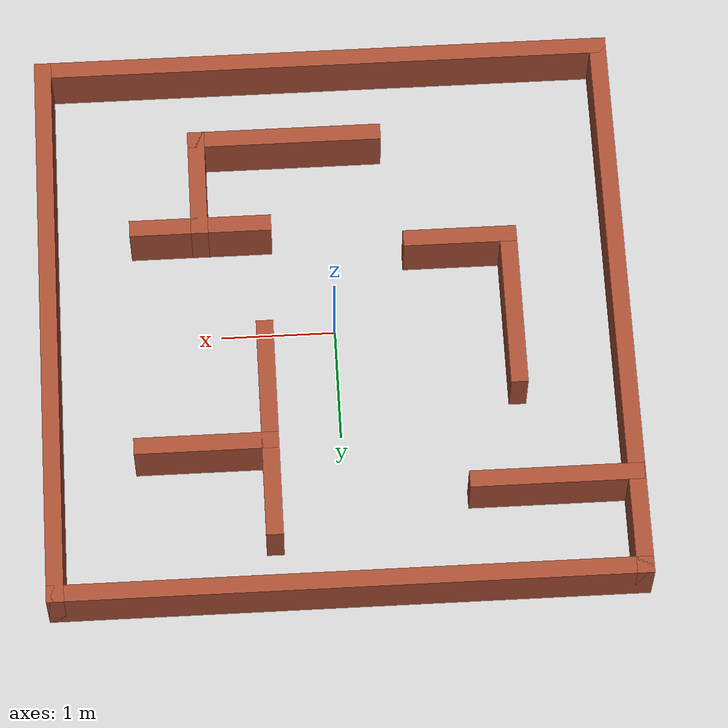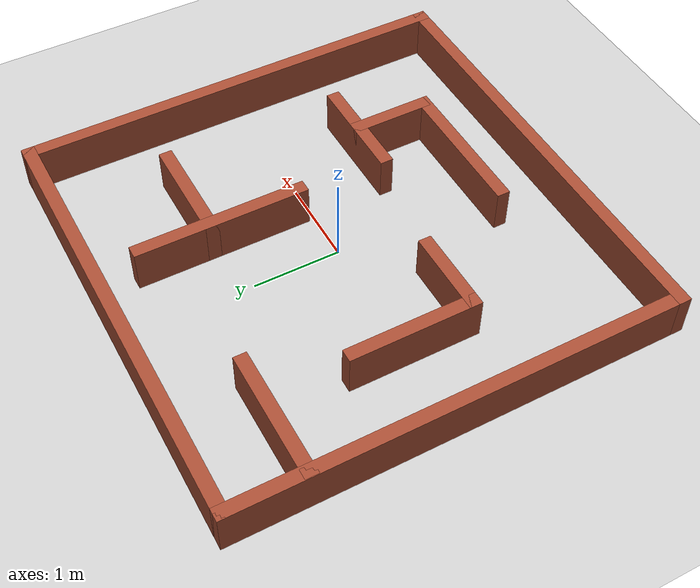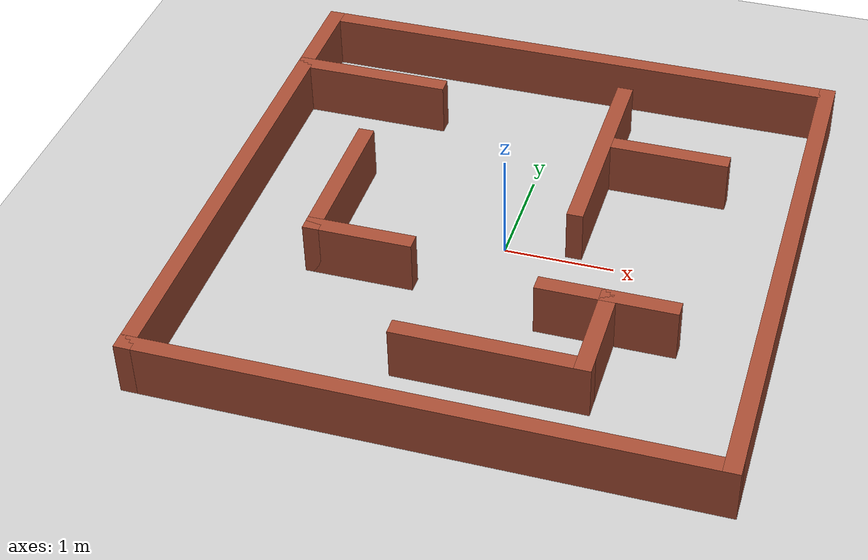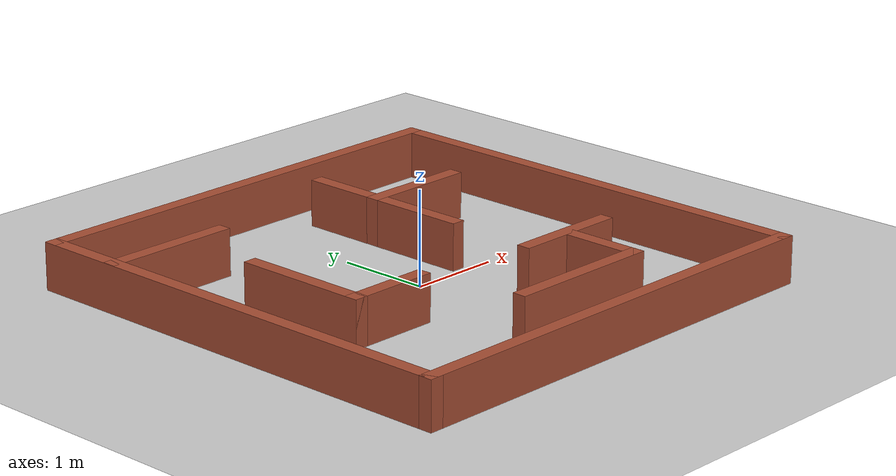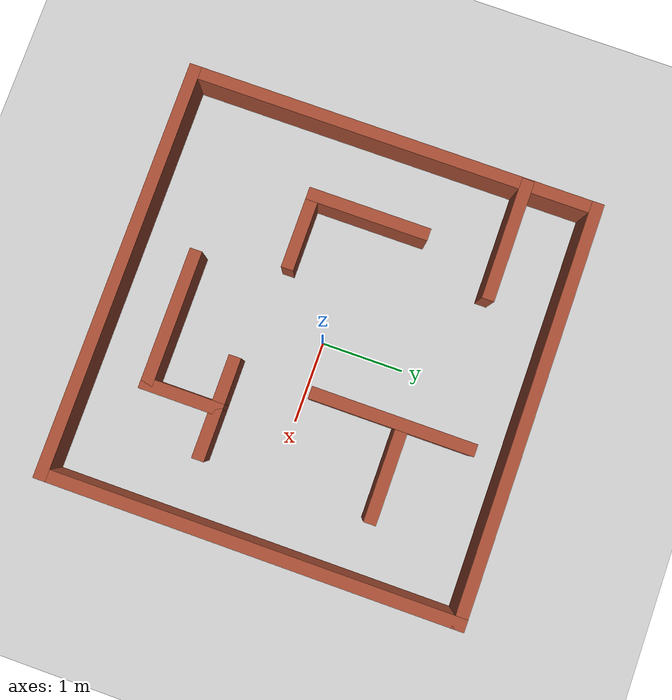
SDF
<sdf version="1.7">
 <world name="default">
  <light name="sun" type="directional">
   <pose>0 0 10 0 -0 0</pose>
   <diffuse>0.8 0.8 0.8 1</diffuse>
   <specular>0.2 0.2 0.2 1</specular>
   <attenuation>
    <range>1000</range>
    <constant>0.9</constant>
    <linear>0.01</linear>
    <quadratic>0.001</quadratic>
   </attenuation>
   <direction>-0.5 0.1 -0.9</direction>
   <spot><inner_angle>0</inner_angle><outer_angle>0</outer_angle><falloff>0</falloff></spot>
  </light>
  <model name="ground_plane">
   <static>1</static>
   <link name="link">
    <collision name="collision">
     <geometry><plane><normal>0 0 1</normal><size>100 100</size></plane></geometry>
     <surface>
      <contact><collide_bitmask>65535</collide_bitmask></contact>
      <friction><ode><mu>100</mu><mu2>50</mu2></ode></friction>
     </surface>
    </collision>
    <visual name="visual">
     <cast_shadows>0</cast_shadows>
     <geometry><plane><normal>0 0 1</normal><size>100 100</size></plane></geometry>
     <material>
      <script><uri>file://media/materials/scripts/gazebo.material</uri><name>Gazebo/Grey</name></script>
     </material>
    </visual>
   </link>
  </model>
  <gravity>0 0 -9.8</gravity>
  <magnetic_field>6e-06 2.3e-05 -4.2e-05</magnetic_field>
  <atmosphere type="adiabatic"/>
  <physics type="ode">
   <max_step_size>0.001</max_step_size>
   <real_time_factor>1</real_time_factor>
   <real_time_update_rate>1000</real_time_update_rate>
  </physics>
  <scene><ambient>0.4 0.4 0.4 1</ambient><background>0.7 0.7 0.7 1</background><shadows>1</shadows></scene>
  <spherical_coordinates>
   <surface_model>EARTH_WGS84</surface_model>
   <latitude_deg>0</latitude_deg>
   <longitude_deg>0</longitude_deg>
   <elevation>0</elevation>
   <heading_deg>0</heading_deg>
  </spherical_coordinates>
  <model name="single_map">
   <link name="Wall_10">
    <collision name="Wall_10_Collision">
     <geometry><box><size>5.15 0.15 0.5</size></box></geometry>
     <pose>0 0 0.25 0 -0 0</pose>
    </collision>
    <visual name="Wall_10_Visual">
     <pose>0 0 0.25 0 -0 0</pose>
     <geometry><box><size>5.15 0.15 0.5</size></box></geometry>
     <material>
      <script><uri>file://media/materials/scripts/gazebo.material</uri><name>Gazebo/Bricks</name></script>
      <ambient>1 1 1 1</ambient>
     </material>
     <meta><layer>0</layer></meta>
    </visual>
    <pose>0 2.5 0 0 -0 0</pose>
   </link>
   <link name="Wall_11">
    <collision name="Wall_11_Collision">
     <geometry><box><size>5.15 0.15 0.5</size></box></geometry>
     <pose>0 0 0.25 0 -0 0</pose>
    </collision>
    <visual name="Wall_11_Visual">
     <pose>0 0 0.25 0 -0 0</pose>
     <geometry><box><size>5.15 0.15 0.5</size></box></geometry>
     <material>
      <script><uri>file://media/materials/scripts/gazebo.material</uri><name>Gazebo/Bricks</name></script>
      <ambient>1 1 1 1</ambient>
     </material>
     <meta><layer>0</layer></meta>
    </visual>
    <pose>2.5 0 0 0 -0 -1.5708</pose>
   </link>
   <link name="Wall_12">
    <collision name="Wall_12_Collision">
     <geometry><box><size>5.15 0.15 0.5</size></box></geometry>
     <pose>0 0 0.25 0 -0 0</pose>
    </collision>
    <visual name="Wall_12_Visual">
     <pose>0 0 0.25 0 -0 0</pose>
     <geometry><box><size>5.15 0.15 0.5</size></box></geometry>
     <material>
      <script><uri>file://media/materials/scripts/gazebo.material</uri><name>Gazebo/Bricks</name></script>
      <ambient>1 1 1 1</ambient>
     </material>
     <meta><layer>0</layer></meta>
    </visual>
    <pose>0 -2.5 0 0 -0 3.14159</pose>
   </link>
   <link name="Wall_13">
    <collision name="Wall_13_Collision">
     <geometry><box><size>5.15 0.15 0.5</size></box></geometry>
     <pose>0 0 0.25 0 -0 0</pose>
    </collision>
    <visual name="Wall_13_Visual">
     <pose>0 0 0.25 0 -0 0</pose>
     <geometry><box><size>5.15 0.15 0.5</size></box></geometry>
     <material>
      <script><uri>file://media/materials/scripts/gazebo.material</uri><name>Gazebo/Bricks</name></script>
      <ambient>1 1 1 1</ambient>
     </material>
     <meta><layer>0</layer></meta>
    </visual>
    <pose>-2.5 0 0 0 -0 1.5708</pose>
   </link>
   <link name="Wall_15">
    <collision name="Wall_15_Collision">
     <geometry><box><size>1.5 0.15 0.5</size></box></geometry>
     <pose>0 0 0.25 0 -0 0</pose>
    </collision>
    <visual name="Wall_15_Visual">
     <pose>0 0 0.25 0 -0 0</pose>
     <geometry><box><size>1.5 0.15 0.5</size></box></geometry>
     <material>
      <script><uri>file://media/materials/scripts/gazebo.material</uri><name>Gazebo/Bricks</name></script>
      <ambient>1 1 1 1</ambient>
     </material>
     <meta><layer>0</layer></meta>
    </visual>
    <pose>-1.817 1.644 0 0 -0 0</pose>
   </link>
   <link name="Wall_17">
    <collision name="Wall_17_Collision">
     <geometry><box><size>1.5 0.15 0.5</size></box></geometry>
     <pose>0 0 0.25 0 -0 0</pose>
    </collision>
    <visual name="Wall_17_Visual">
     <pose>0 0 0.25 0 -0 0</pose>
     <geometry><box><size>1.5 0.15 0.5</size></box></geometry>
     <material>
      <script><uri>file://media/materials/scripts/gazebo.material</uri><name>Gazebo/Bricks</name></script>
      <ambient>1 1 1 1</ambient>
     </material>
     <meta><layer>0</layer></meta>
    </visual>
    <pose>-1.561 0.011 0 0 -0 -1.5708</pose>
   </link>
   <link name="Wall_18">
    <collision name="Wall_18_Collision">
     <geometry><box><size>1 0.15 0.5</size></box></geometry>
     <pose>0 0 0.25 0 -0 0</pose>
    </collision>
    <visual name="Wall_18_Visual">
     <pose>0 0 0.25 0 -0 0</pose>
     <geometry><box><size>1 0.15 0.5</size></box></geometry>
     <material>
      <script><uri>file://media/materials/scripts/gazebo.material</uri><name>Gazebo/Bricks</name></script>
      <ambient>1 1 1 1</ambient>
     </material>
     <meta><layer>0</layer></meta>
    </visual>
    <pose>-1.136 -0.664 0 0 -0 0</pose>
   </link>
   <link name="Wall_20">
    <collision name="Wall_20_Collision">
     <geometry><box><size>2 0.15 0.5</size></box></geometry>
     <pose>0 0 0.25 0 -0 0</pose>
    </collision>
    <visual name="Wall_20_Visual">
     <pose>0 0 0.25 0 -0 0</pose>
     <geometry><box><size>2 0.15 0.5</size></box></geometry>
     <material>
      <script><uri>file://media/materials/scripts/gazebo.material</uri><name>Gazebo/Bricks</name></script>
      <ambient>1 1 1 1</ambient>
     </material>
     <meta><layer>0</layer></meta>
    </visual>
    <pose>0.62 1.064 0 0 -0 -1.5708</pose>
   </link>
   <link name="Wall_22">
    <collision name="Wall_22_Collision">
     <geometry><box><size>1.25 0.15 0.5</size></box></geometry>
     <pose>0 0 0.25 0 -0 0</pose>
    </collision>
    <visual name="Wall_22_Visual">
     <pose>0 0 0.25 0 -0 0</pose>
     <geometry><box><size>1.25 0.15 0.5</size></box></geometry>
     <material>
      <script><uri>file://media/materials/scripts/gazebo.material</uri><name>Gazebo/Bricks</name></script>
      <ambient>1 1 1 1</ambient>
     </material>
     <meta><layer>0</layer></meta>
    </visual>
    <pose>1.17 1.191 0 0 -0 0</pose>
   </link>
   <link name="Wall_24">
    <collision name="Wall_24_Collision">
     <geometry><box><size>1.25 0.15 0.5</size></box></geometry>
     <pose>0 0 0.25 0 -0 0</pose>
    </collision>
    <visual name="Wall_24_Visual">
     <pose>0 0 0.25 0 -0 0</pose>
     <geometry><box><size>1.25 0.15 0.5</size></box></geometry>
     <material>
      <script><uri>file://media/materials/scripts/gazebo.material</uri><name>Gazebo/Bricks</name></script>
      <ambient>1 1 1 1</ambient>
     </material>
     <meta><layer>0</layer></meta>
    </visual>
    <pose>1.144 -0.883 0 0 -0 0</pose>
   </link>
   <link name="Wall_26">
    <collision name="Wall_26_Collision">
     <geometry><box><size>1 0.15 0.5</size></box></geometry>
     <pose>0 0 0.25 0 -0 0</pose>
    </collision>
    <visual name="Wall_26_Visual">
     <pose>0 0 0.25 0 -0 0</pose>
     <geometry><box><size>1 0.15 0.5</size></box></geometry>
     <material>
      <script><uri>file://media/materials/scripts/gazebo.material</uri><name>Gazebo/Bricks</name></script>
      <ambient>1 1 1 1</ambient>
     </material>
     <meta><layer>0</layer></meta>
    </visual>
    <pose>1.152 -1.308 0 0 -0 -1.5708</pose>
   </link>
   <link name="Wall_27">
    <collision name="Wall_27_Collision">
     <geometry><box><size>1.7234 0.15 0.5</size></box></geometry>
     <pose>0 0 0.25 0 -0 0</pose>
    </collision>
    <visual name="Wall_27_Visual">
     <pose>0 0 0.25 0 -0 0</pose>
     <geometry><box><size>1.7234 0.15 0.5</size></box></geometry>
     <material>
      <script><uri>file://media/materials/scripts/gazebo.material</uri><name>Gazebo/Bricks</name></script>
      <ambient>1 1 1 1</ambient>
     </material>
     <meta><layer>0</layer></meta>
    </visual>
    <pose>0.3655 -1.733 0 0 -0 3.14159</pose>
   </link>
   <static>1</static>
  </model>
 </world>
</sdf>
